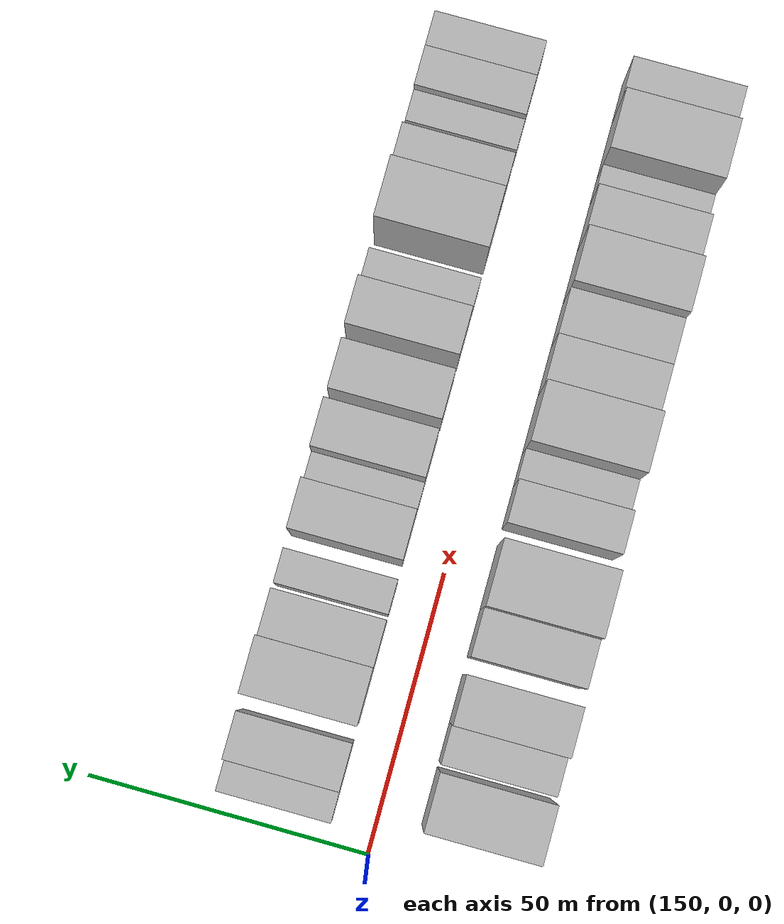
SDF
<sdf version="1.6">
 <world name="default">
  <model name="building_15">
   <static>1</static>
   <pose>157.1167 17.5000 0 0.000000 0.000000 1.570796</pose>
   <link name="link">
    <pose>0 0 6.00 0 0 0</pose>
    <collision name="collision"><geometry><box><size>20.0000 5.6469 12.0000</size></box></geometry></collision>
    <visual name="visual">
     <cast_shadows>0</cast_shadows>
     <geometry><box><size>20.0000 5.6469 12.0000</size></box></geometry>
     <material>
      <script>
       <uri>model://HANNAS_wall/materials/scripts</uri>
       <uri>model://HANNAS_wall/materials/textures</uri>
       <name>vrc/HANNAS_wall</name>
      </script>
     </material>
    </visual>
   </link>
  </model>
  <model name="building_16">
   <static>1</static>
   <pose>164.0576 17.5000 0 0.000000 0.000000 1.570796</pose>
   <link name="link">
    <pose>0 0 9.00 0 0 0</pose>
    <collision name="collision"><geometry><box><size>20.0000 8.2351 18.0000</size></box></geometry></collision>
    <visual name="visual">
     <cast_shadows>0</cast_shadows>
     <geometry><box><size>20.0000 8.2351 18.0000</size></box></geometry>
     <material>
      <script>
       <uri>model://HANNAS_wall/materials/scripts</uri>
       <uri>model://HANNAS_wall/materials/textures</uri>
       <name>vrc/HANNAS_wall</name>
      </script>
     </material>
    </visual>
   </link>
  </model>
  <model name="building_17">
   <static>1</static>
   <pose>176.0760 17.5000 0 0.000000 0.000000 1.570796</pose>
   <link name="link">
    <pose>0 0 12.00 0 0 0</pose>
    <collision name="collision"><geometry><box><size>20.0000 9.8016 24.0000</size></box></geometry></collision>
    <visual name="visual">
     <cast_shadows>0</cast_shadows>
     <geometry><box><size>20.0000 9.8016 24.0000</size></box></geometry>
     <material>
      <script>
       <uri>model://HANNAS_wall/materials/scripts</uri>
       <uri>model://HANNAS_wall/materials/textures</uri>
       <name>vrc/HANNAS_wall</name>
      </script>
     </material>
    </visual>
   </link>
  </model>
  <model name="building_18">
   <static>1</static>
   <pose>185.0496 17.5000 0 0.000000 0.000000 1.570796</pose>
   <link name="link">
    <pose>0 0 9.00 0 0 0</pose>
    <collision name="collision"><geometry><box><size>20.0000 8.1455 18.0000</size></box></geometry></collision>
    <visual name="visual">
     <cast_shadows>0</cast_shadows>
     <geometry><box><size>20.0000 8.1455 18.0000</size></box></geometry>
     <material>
      <script>
       <uri>model://HANNAS_wall/materials/scripts</uri>
       <uri>model://HANNAS_wall/materials/textures</uri>
       <name>vrc/HANNAS_wall</name>
      </script>
     </material>
    </visual>
   </link>
  </model>
  <model name="building_19">
   <static>1</static>
   <pose>193.1614 17.5000 0 0.000000 0.000000 1.570796</pose>
   <link name="link">
    <pose>0 0 7.50 0 0 0</pose>
    <collision name="collision"><geometry><box><size>20.0000 6.0782 15.0000</size></box></geometry></collision>
    <visual name="visual">
     <cast_shadows>0</cast_shadows>
     <geometry><box><size>20.0000 6.0782 15.0000</size></box></geometry>
     <material>
      <script>
       <uri>model://HANNAS_wall/materials/scripts</uri>
       <uri>model://HANNAS_wall/materials/textures</uri>
       <name>vrc/HANNAS_wall</name>
      </script>
     </material>
    </visual>
   </link>
  </model>
  <model name="building_20">
   <static>1</static>
   <pose>203.5770 17.5000 0 0.000000 0.000000 1.570796</pose>
   <link name="link">
    <pose>0 0 10.50 0 0 0</pose>
    <collision name="collision"><geometry><box><size>20.0000 8.7530 21.0000</size></box></geometry></collision>
    <visual name="visual">
     <cast_shadows>0</cast_shadows>
     <geometry><box><size>20.0000 8.7530 21.0000</size></box></geometry>
     <material>
      <script>
       <uri>model://HANNAS_wall/materials/scripts</uri>
       <uri>model://HANNAS_wall/materials/textures</uri>
       <name>vrc/HANNAS_wall</name>
      </script>
     </material>
    </visual>
   </link>
  </model>
  <model name="building_21">
   <static>1</static>
   <pose>210.6420 17.5000 0 0.000000 0.000000 1.570796</pose>
   <link name="link">
    <pose>0 0 6.00 0 0 0</pose>
    <collision name="collision"><geometry><box><size>20.0000 5.3771 12.0000</size></box></geometry></collision>
    <visual name="visual">
     <cast_shadows>0</cast_shadows>
     <geometry><box><size>20.0000 5.3771 12.0000</size></box></geometry>
     <material>
      <script>
       <uri>model://HANNAS_wall/materials/scripts</uri>
       <uri>model://HANNAS_wall/materials/textures</uri>
       <name>vrc/HANNAS_wall</name>
      </script>
     </material>
    </visual>
   </link>
  </model>
  <model name="building_22">
   <static>1</static>
   <pose>217.5664 17.5000 0 0.000000 0.000000 1.570796</pose>
   <link name="link">
    <pose>0 0 10.50 0 0 0</pose>
    <collision name="collision"><geometry><box><size>20.0000 8.4718 21.0000</size></box></geometry></collision>
    <visual name="visual">
     <cast_shadows>0</cast_shadows>
     <geometry><box><size>20.0000 8.4718 21.0000</size></box></geometry>
     <material>
      <script>
       <uri>model://HANNAS_wall/materials/scripts</uri>
       <uri>model://HANNAS_wall/materials/textures</uri>
       <name>vrc/HANNAS_wall</name>
      </script>
     </material>
    </visual>
   </link>
  </model>
  <model name="building_23">
   <static>1</static>
   <pose>228.2282 17.5000 0 0.000000 0.000000 1.570796</pose>
   <link name="link">
    <pose>0 0 9.00 0 0 0</pose>
    <collision name="collision"><geometry><box><size>20.0000 8.8518 18.0000</size></box></geometry></collision>
    <visual name="visual">
     <cast_shadows>0</cast_shadows>
     <geometry><box><size>20.0000 8.8518 18.0000</size></box></geometry>
     <material>
      <script>
       <uri>model://HANNAS_wall/materials/scripts</uri>
       <uri>model://HANNAS_wall/materials/textures</uri>
       <name>vrc/HANNAS_wall</name>
      </script>
     </material>
    </visual>
   </link>
  </model>
  <model name="building_24">
   <static>1</static>
   <pose>238.8957 17.5000 0 0.000000 0.000000 1.570796</pose>
   <link name="link">
    <pose>0 0 10.50 0 0 0</pose>
    <collision name="collision"><geometry><box><size>20.0000 8.4833 21.0000</size></box></geometry></collision>
    <visual name="visual">
     <cast_shadows>0</cast_shadows>
     <geometry><box><size>20.0000 8.4833 21.0000</size></box></geometry>
     <material>
      <script>
       <uri>model://HANNAS_wall/materials/scripts</uri>
       <uri>model://HANNAS_wall/materials/textures</uri>
       <name>vrc/HANNAS_wall</name>
      </script>
     </material>
    </visual>
   </link>
  </model>
  <model name="building_25">
   <static>1</static>
   <pose>246.9758 17.5000 0 0.000000 0.000000 1.570796</pose>
   <link name="link">
    <pose>0 0 6.00 0 0 0</pose>
    <collision name="collision"><geometry><box><size>20.0000 5.6768 12.0000</size></box></geometry></collision>
    <visual name="visual">
     <cast_shadows>0</cast_shadows>
     <geometry><box><size>20.0000 5.6768 12.0000</size></box></geometry>
     <material>
      <script>
       <uri>model://HANNAS_wall/materials/scripts</uri>
       <uri>model://HANNAS_wall/materials/textures</uri>
       <name>vrc/HANNAS_wall</name>
      </script>
     </material>
    </visual>
   </link>
  </model>
  <model name="building_26">
   <static>1</static>
   <pose>258.2044 17.5000 0 0.000000 0.000000 1.570796</pose>
   <link name="link">
    <pose>0 0 12.00 0 0 0</pose>
    <collision name="collision"><geometry><box><size>20.0000 10.7804 24.0000</size></box></geometry></collision>
    <visual name="visual">
     <cast_shadows>0</cast_shadows>
     <geometry><box><size>20.0000 10.7804 24.0000</size></box></geometry>
     <material>
      <script>
       <uri>model://HANNAS_wall/materials/scripts</uri>
       <uri>model://HANNAS_wall/materials/textures</uri>
       <name>vrc/HANNAS_wall</name>
      </script>
     </material>
    </visual>
   </link>
  </model>
  <model name="building_27">
   <static>1</static>
   <pose>267.2992 17.5000 0 0.000000 0.000000 1.570796</pose>
   <link name="link">
    <pose>0 0 9.00 0 0 0</pose>
    <collision name="collision"><geometry><box><size>20.0000 7.4094 18.0000</size></box></geometry></collision>
    <visual name="visual">
     <cast_shadows>0</cast_shadows>
     <geometry><box><size>20.0000 7.4094 18.0000</size></box></geometry>
     <material>
      <script>
       <uri>model://HANNAS_wall/materials/scripts</uri>
       <uri>model://HANNAS_wall/materials/textures</uri>
       <name>vrc/HANNAS_wall</name>
      </script>
     </material>
    </visual>
   </link>
  </model>
  <model name="building_28">
   <static>1</static>
   <pose>275.8437 17.5000 0 0.000000 0.000000 1.570796</pose>
   <link name="link">
    <pose>0 0 6.00 0 0 0</pose>
    <collision name="collision"><geometry><box><size>20.0000 5.6797 12.0000</size></box></geometry></collision>
    <visual name="visual">
     <cast_shadows>0</cast_shadows>
     <geometry><box><size>20.0000 5.6797 12.0000</size></box></geometry>
     <material>
      <script>
       <uri>model://HANNAS_wall/materials/scripts</uri>
       <uri>model://HANNAS_wall/materials/textures</uri>
       <name>vrc/HANNAS_wall</name>
      </script>
     </material>
    </visual>
   </link>
  </model>
  <model name="building_29">
   <static>1</static>
   <pose>282.2980 17.5000 0 0.000000 0.000000 1.570796</pose>
   <link name="link">
    <pose>0 0 7.50 0 0 0</pose>
    <collision name="collision"><geometry><box><size>20.0000 7.2288 15.0000</size></box></geometry></collision>
    <visual name="visual">
     <cast_shadows>0</cast_shadows>
     <geometry><box><size>20.0000 7.2288 15.0000</size></box></geometry>
     <material>
      <script>
       <uri>model://HANNAS_wall/materials/scripts</uri>
       <uri>model://HANNAS_wall/materials/textures</uri>
       <name>vrc/HANNAS_wall</name>
      </script>
     </material>
    </visual>
   </link>
  </model>
  <model name="building_30">
   <static>1</static>
   <pose>289.0612 17.5000 0 0.000000 0.000000 1.570796</pose>
   <link name="link">
    <pose>0 0 7.50 0 0 0</pose>
    <collision name="collision"><geometry><box><size>20.0000 6.2976 15.0000</size></box></geometry></collision>
    <visual name="visual">
     <cast_shadows>0</cast_shadows>
     <geometry><box><size>20.0000 6.2976 15.0000</size></box></geometry>
     <material>
      <script>
       <uri>model://HANNAS_wall/materials/scripts</uri>
       <uri>model://HANNAS_wall/materials/textures</uri>
       <name>vrc/HANNAS_wall</name>
      </script>
     </material>
    </visual>
   </link>
  </model>
  <model name="building_45">
   <static>1</static>
   <pose>162.5584 -17.5000 0 0.000000 0.000000 1.570796</pose>
   <link name="link">
    <pose>0 0 10.50 0 0 0</pose>
    <collision name="collision"><geometry><box><size>20.0000 10.1430 21.0000</size></box></geometry></collision>
    <visual name="visual">
     <cast_shadows>0</cast_shadows>
     <geometry><box><size>20.0000 10.1430 21.0000</size></box></geometry>
     <material>
      <script>
       <uri>model://HANNAS_wall/materials/scripts</uri>
       <uri>model://HANNAS_wall/materials/textures</uri>
       <name>vrc/HANNAS_wall</name>
      </script>
     </material>
    </visual>
   </link>
  </model>
  <model name="building_46">
   <static>1</static>
   <pose>172.0141 -17.5000 0 0.000000 0.000000 1.570796</pose>
   <link name="link">
    <pose>0 0 7.50 0 0 0</pose>
    <collision name="collision"><geometry><box><size>20.0000 6.7682 15.0000</size></box></geometry></collision>
    <visual name="visual">
     <cast_shadows>0</cast_shadows>
     <geometry><box><size>20.0000 6.7682 15.0000</size></box></geometry>
     <material>
      <script>
       <uri>model://HANNAS_wall/materials/scripts</uri>
       <uri>model://HANNAS_wall/materials/textures</uri>
       <name>vrc/HANNAS_wall</name>
      </script>
     </material>
    </visual>
   </link>
  </model>
  <model name="building_47">
   <static>1</static>
   <pose>179.7088 -17.5000 0 0.000000 0.000000 1.570796</pose>
   <link name="link">
    <pose>0 0 10.50 0 0 0</pose>
    <collision name="collision"><geometry><box><size>20.0000 8.6212 21.0000</size></box></geometry></collision>
    <visual name="visual">
     <cast_shadows>0</cast_shadows>
     <geometry><box><size>20.0000 8.6212 21.0000</size></box></geometry>
     <material>
      <script>
       <uri>model://HANNAS_wall/materials/scripts</uri>
       <uri>model://HANNAS_wall/materials/textures</uri>
       <name>vrc/HANNAS_wall</name>
      </script>
     </material>
    </visual>
   </link>
  </model>
  <model name="building_48">
   <static>1</static>
   <pose>191.2568 -17.5000 0 0.000000 0.000000 1.570796</pose>
   <link name="link">
    <pose>0 0 9.00 0 0 0</pose>
    <collision name="collision"><geometry><box><size>20.0000 8.4749 18.0000</size></box></geometry></collision>
    <visual name="visual">
     <cast_shadows>0</cast_shadows>
     <geometry><box><size>20.0000 8.4749 18.0000</size></box></geometry>
     <material>
      <script>
       <uri>model://HANNAS_wall/materials/scripts</uri>
       <uri>model://HANNAS_wall/materials/textures</uri>
       <name>vrc/HANNAS_wall</name>
      </script>
     </material>
    </visual>
   </link>
  </model>
  <model name="building_49">
   <static>1</static>
   <pose>201.2703 -17.5000 0 0.000000 0.000000 1.570796</pose>
   <link name="link">
    <pose>0 0 12.00 0 0 0</pose>
    <collision name="collision"><geometry><box><size>20.0000 11.5521 24.0000</size></box></geometry></collision>
    <visual name="visual">
     <cast_shadows>0</cast_shadows>
     <geometry><box><size>20.0000 11.5521 24.0000</size></box></geometry>
     <material>
      <script>
       <uri>model://HANNAS_wall/materials/scripts</uri>
       <uri>model://HANNAS_wall/materials/textures</uri>
       <name>vrc/HANNAS_wall</name>
      </script>
     </material>
    </visual>
   </link>
  </model>
  <model name="building_50">
   <static>1</static>
   <pose>213.8423 -17.5000 0 0.000000 0.000000 1.570796</pose>
   <link name="link">
    <pose>0 0 9.00 0 0 0</pose>
    <collision name="collision"><geometry><box><size>20.0000 7.5920 18.0000</size></box></geometry></collision>
    <visual name="visual">
     <cast_shadows>0</cast_shadows>
     <geometry><box><size>20.0000 7.5920 18.0000</size></box></geometry>
     <material>
      <script>
       <uri>model://HANNAS_wall/materials/scripts</uri>
       <uri>model://HANNAS_wall/materials/textures</uri>
       <name>vrc/HANNAS_wall</name>
      </script>
     </material>
    </visual>
   </link>
  </model>
  <model name="building_51">
   <static>1</static>
   <pose>220.6054 -17.5000 0 0.000000 0.000000 1.570796</pose>
   <link name="link">
    <pose>0 0 6.00 0 0 0</pose>
    <collision name="collision"><geometry><box><size>20.0000 5.9341 12.0000</size></box></geometry></collision>
    <visual name="visual">
     <cast_shadows>0</cast_shadows>
     <geometry><box><size>20.0000 5.9341 12.0000</size></box></geometry>
     <material>
      <script>
       <uri>model://HANNAS_wall/materials/scripts</uri>
       <uri>model://HANNAS_wall/materials/textures</uri>
       <name>vrc/HANNAS_wall</name>
      </script>
     </material>
    </visual>
   </link>
  </model>
  <model name="building_52">
   <static>1</static>
   <pose>228.8531 -17.5000 0 0.000000 0.000000 1.570796</pose>
   <link name="link">
    <pose>0 0 12.00 0 0 0</pose>
    <collision name="collision"><geometry><box><size>20.0000 10.5613 24.0000</size></box></geometry></collision>
    <visual name="visual">
     <cast_shadows>0</cast_shadows>
     <geometry><box><size>20.0000 10.5613 24.0000</size></box></geometry>
     <material>
      <script>
       <uri>model://HANNAS_wall/materials/scripts</uri>
       <uri>model://HANNAS_wall/materials/textures</uri>
       <name>vrc/HANNAS_wall</name>
      </script>
     </material>
    </visual>
   </link>
  </model>
  <model name="building_53">
   <static>1</static>
   <pose>238.6192 -17.5000 0 0.000000 0.000000 1.570796</pose>
   <link name="link">
    <pose>0 0 9.00 0 0 0</pose>
    <collision name="collision"><geometry><box><size>20.0000 8.9711 18.0000</size></box></geometry></collision>
    <visual name="visual">
     <cast_shadows>0</cast_shadows>
     <geometry><box><size>20.0000 8.9711 18.0000</size></box></geometry>
     <material>
      <script>
       <uri>model://HANNAS_wall/materials/scripts</uri>
       <uri>model://HANNAS_wall/materials/textures</uri>
       <name>vrc/HANNAS_wall</name>
      </script>
     </material>
    </visual>
   </link>
  </model>
  <model name="building_54">
   <static>1</static>
   <pose>247.1729 -17.5000 0 0.000000 0.000000 1.570796</pose>
   <link name="link">
    <pose>0 0 9.00 0 0 0</pose>
    <collision name="collision"><geometry><box><size>20.0000 8.1363 18.0000</size></box></geometry></collision>
    <visual name="visual">
     <cast_shadows>0</cast_shadows>
     <geometry><box><size>20.0000 8.1363 18.0000</size></box></geometry>
     <material>
      <script>
       <uri>model://HANNAS_wall/materials/scripts</uri>
       <uri>model://HANNAS_wall/materials/textures</uri>
       <name>vrc/HANNAS_wall</name>
      </script>
     </material>
    </visual>
   </link>
  </model>
  <model name="building_55">
   <static>1</static>
   <pose>256.1180 -17.5000 0 0.000000 0.000000 1.570796</pose>
   <link name="link">
    <pose>0 0 12.00 0 0 0</pose>
    <collision name="collision"><geometry><box><size>20.0000 9.7540 24.0000</size></box></geometry></collision>
    <visual name="visual">
     <cast_shadows>0</cast_shadows>
     <geometry><box><size>20.0000 9.7540 24.0000</size></box></geometry>
     <material>
      <script>
       <uri>model://HANNAS_wall/materials/scripts</uri>
       <uri>model://HANNAS_wall/materials/textures</uri>
       <name>vrc/HANNAS_wall</name>
      </script>
     </material>
    </visual>
   </link>
  </model>
  <model name="building_56">
   <static>1</static>
   <pose>265.3209 -17.5000 0 0.000000 0.000000 1.570796</pose>
   <link name="link">
    <pose>0 0 9.00 0 0 0</pose>
    <collision name="collision"><geometry><box><size>20.0000 8.6519 18.0000</size></box></geometry></collision>
    <visual name="visual">
     <cast_shadows>0</cast_shadows>
     <geometry><box><size>20.0000 8.6519 18.0000</size></box></geometry>
     <material>
      <script>
       <uri>model://HANNAS_wall/materials/scripts</uri>
       <uri>model://HANNAS_wall/materials/textures</uri>
       <name>vrc/HANNAS_wall</name>
      </script>
     </material>
    </visual>
   </link>
  </model>
  <model name="building_57">
   <static>1</static>
   <pose>272.1334 -17.5000 0 0.000000 0.000000 1.570796</pose>
   <link name="link">
    <pose>0 0 6.00 0 0 0</pose>
    <collision name="collision"><geometry><box><size>20.0000 4.9730 12.0000</size></box></geometry></collision>
    <visual name="visual">
     <cast_shadows>0</cast_shadows>
     <geometry><box><size>20.0000 4.9730 12.0000</size></box></geometry>
     <material>
      <script>
       <uri>model://HANNAS_wall/materials/scripts</uri>
       <uri>model://HANNAS_wall/materials/textures</uri>
       <name>vrc/HANNAS_wall</name>
      </script>
     </material>
    </visual>
   </link>
  </model>
  <model name="building_58">
   <static>1</static>
   <pose>279.9167 -17.5000 0 0.000000 0.000000 1.570796</pose>
   <link name="link">
    <pose>0 0 12.00 0 0 0</pose>
    <collision name="collision"><geometry><box><size>20.0000 10.5937 24.0000</size></box></geometry></collision>
    <visual name="visual">
     <cast_shadows>0</cast_shadows>
     <geometry><box><size>20.0000 10.5937 24.0000</size></box></geometry>
     <material>
      <script>
       <uri>model://HANNAS_wall/materials/scripts</uri>
       <uri>model://HANNAS_wall/materials/textures</uri>
       <name>vrc/HANNAS_wall</name>
      </script>
     </material>
    </visual>
   </link>
  </model>
  <model name="building_59">
   <static>1</static>
   <pose>288.9340 -17.5000 0 0.000000 0.000000 1.570796</pose>
   <link name="link">
    <pose>0 0 9.00 0 0 0</pose>
    <collision name="collision"><geometry><box><size>20.0000 7.4408 18.0000</size></box></geometry></collision>
    <visual name="visual">
     <cast_shadows>0</cast_shadows>
     <geometry><box><size>20.0000 7.4408 18.0000</size></box></geometry>
     <material>
      <script>
       <uri>model://HANNAS_wall/materials/scripts</uri>
       <uri>model://HANNAS_wall/materials/textures</uri>
       <name>vrc/HANNAS_wall</name>
      </script>
     </material>
    </visual>
   </link>
  </model>
 </world>
</sdf>
